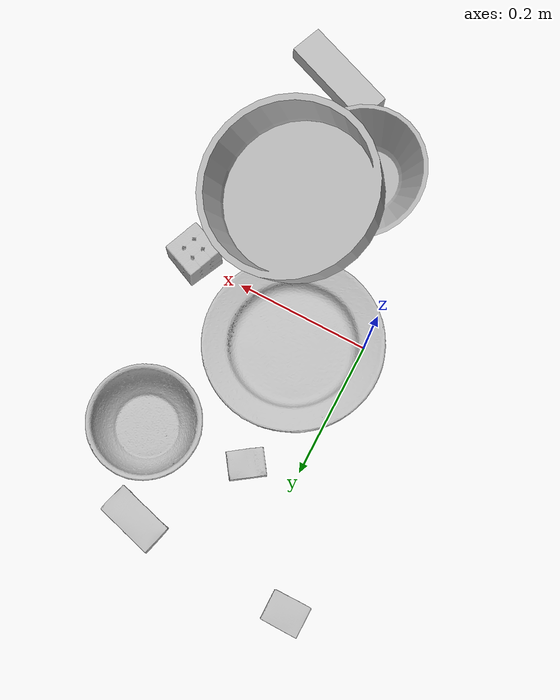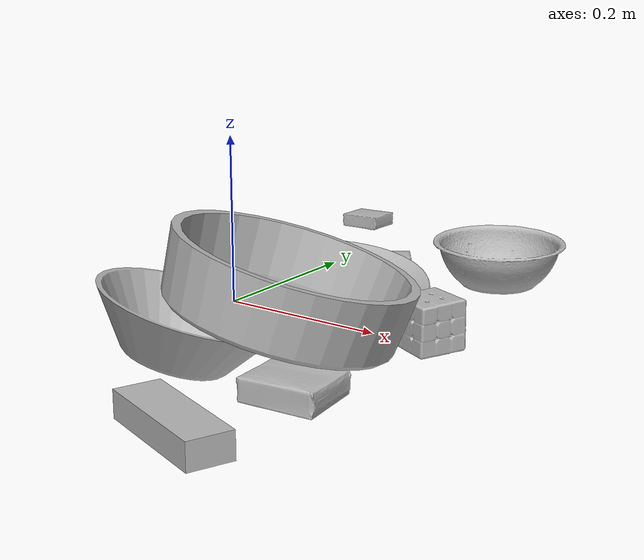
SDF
<sdf version="1.4">
  <world name="default">
    <light name="light1" type="point">
      <pose>0 0 1 0 0 0</pose>
      <diffuse>3 3 3 1</diffuse>
      <specular>3 3 3 1</specular>
    </light>
    <light name="light2" type="point">
      <pose>0 0.5 2 0 0 0</pose>
      <diffuse>1 1 1 1</diffuse>
      <specular>1 1 1 1</specular>
    </light>
    <light name="light3" type="point">
      <pose>0 0.5 2 0 0 0</pose>
      <diffuse>3 3 3 1</diffuse>
      <specular>3 3 3 1</specular>
    </light>
    <scene>
      <ambient>0.7 0.7 0.7</ambient>
    </scene>
    <model name="box1">
      <link name="link_box1">
        <collision name="default">
          <geometry>
            <mesh>
              <uri>model://jenga/collision_meshes/collision.obj</uri>
              <scale>1.0 1.0 1.0</scale>
            </mesh>
          </geometry>
          <surface>
            <friction>
              <ode>
                <mu>0.5</mu>
                <mu2>0.5</mu2>
              </ode>
            </friction>
          <contact>
        <ode>
            <max_vel>0</max_vel>
            <min_depth>0.0001</min_depth>
            <kp>1e8</kp>
        </ode>
    </contact></surface>
        </collision>
        <visual name="default">
          <geometry>
            <mesh>
              <uri>model://jenga/visual_meshes/visual.dae</uri>
              <scale>1.0 1.0 1.0</scale>
            </mesh>
          </geometry>
        </visual>
        <inertial>
          <mass>0.2830650806427002</mass>
          <pose>-2.502855807051674e-07 -0.00010250010382151231 -4.0923401684267446e-05 0.0 -7.34215461761844e-07 0.0</pose>
          <inertia>
            <ixx>7.833097e-05</ixx>
            <iyy>0.0005307686</iyy>
            <izz>0.0005666406</izz>
            <ixy>0</ixy>
            <ixz>0</ixz>
            <iyz>0</iyz>
          </inertia>
        </inertial>
      </link>
      <pose>0.22101682424545288 -0.34949374198913574 0.01499999687075615 -1.584611024230362e-08 7.26703799904159e-10 2.7734441649621284</pose>
    </model>
    <model name="box11">
      <link name="link_box11">
        <collision name="default">
          <geometry>
            <mesh>
              <uri>model://cracker_box/collision_meshes/collision.obj</uri>
              <scale>0.25 0.25 0.25</scale>
            </mesh>
          </geometry>
          <surface>
            <friction>
              <ode>
                <mu>0.5</mu>
                <mu2>0.5</mu2>
              </ode>
            </friction>
          <contact>
        <ode>
            <max_vel>0</max_vel>
            <min_depth>0.0001</min_depth>
            <kp>1e8</kp>
        </ode>
    </contact></surface>
        </collision>
        <visual name="default">
          <geometry>
            <mesh>
              <uri>model://cracker_box/visual_meshes/visual.dae</uri>
              <scale>0.25 0.25 0.25</scale>
            </mesh>
          </geometry>
        </visual>
        <inertial>
          <mass>0.04137800261378288</mass>
          <pose>0.00023660347505938262 6.358561950037256e-05 -0.0004257383698131889 -0.00031620748486547713 -0.011106488669102847 0.002546795699546287</pose>
          <inertia>
            <ixx>6.577948e-06</ixx>
            <iyy>1.0861484e-05</iyy>
            <izz>1.5500336e-05</izz>
            <ixy>0</ixy>
            <ixz>0</ixz>
            <iyz>0</iyz>
          </inertia>
        </inertial>
      </link>
      <pose>0.07039869576692581 0.22493493556976318 0.009096028283238411 -0.014050245688698268 -0.005016441211208985 0.6179279692105227</pose>
    </model>
    <model name="box2">
      <link name="link_box2">
        <collision name="default">
          <geometry>
            <mesh>
              <uri>model://gelatin_box/collision_meshes/collision.obj</uri>
              <scale>1.0 1.0 1.0</scale>
            </mesh>
          </geometry>
          <surface>
            <friction>
              <ode>
                <mu>0.5</mu>
                <mu2>0.5</mu2>
              </ode>
            </friction>
          <contact>
        <ode>
            <max_vel>0</max_vel>
            <min_depth>0.0001</min_depth>
            <kp>1e8</kp>
        </ode>
    </contact></surface>
        </collision>
        <visual name="default">
          <geometry>
            <mesh>
              <uri>model://gelatin_box/visual_meshes/visual.dae</uri>
              <scale>1.0 1.0 1.0</scale>
            </mesh>
          </geometry>
        </visual>
        <inertial>
          <mass>0.22900472581386566</mass>
          <pose>0.000431961816502735 0.00011156871914863586 -0.0003640321083366871 -0.001050372089182411 -0.004755818223717792 0.016440559471606643</pose>
          <inertia>
            <ixx>0.00016165864</ixx>
            <iyy>0.00011547193</iyy>
            <izz>0.00024608054</izz>
            <ixy>0</ixy>
            <ixz>0</ixz>
            <iyz>0</iyz>
          </inertia>
        </inertial>
      </link>
      <pose>0.2524434030056 -0.20873324573040009 0.015168342739343643 0.005605290846359133 -0.00729637572268423 1.6633535921523723</pose>
    </model>
    <model name="box21">
      <link name="link_box21">
        <collision name="default">
          <geometry>
            <mesh>
              <uri>model://sugar_box/collision_meshes/collision.obj</uri>
              <scale>0.5 0.5 0.5</scale>
            </mesh>
          </geometry>
          <surface>
            <friction>
              <ode>
                <mu>0.5</mu>
                <mu2>0.5</mu2>
              </ode>
            </friction>
          <contact>
        <ode>
            <max_vel>0</max_vel>
            <min_depth>0.0001</min_depth>
            <kp>1e8</kp>
        </ode>
    </contact></surface>
        </collision>
        <visual name="default">
          <geometry>
            <mesh>
              <uri>model://sugar_box/visual_meshes/visual.dae</uri>
              <scale>0.5 0.5 0.5</scale>
            </mesh>
          </geometry>
        </visual>
        <inertial>
          <mass>0.12271630764007568</mass>
          <pose>0.0005171863595023751 1.924554817378521e-05 -0.00018182404164690524 -0.00040462595111886014 0.0010506636380741379 0.0026153785562511135</pose>
          <inertia>
            <ixx>2.5561721e-05</ixx>
            <iyy>8.262075e-05</iyy>
            <izz>9.890688e-05</izz>
            <ixy>0</ixy>
            <ixz>0</ixz>
            <iyz>0</iyz>
          </inertia>
        </inertial>
      </link>
      <pose>0.17023219168186188 0.3636738061904907 0.011399299837648869 0.0007750777126933873 -0.023433147979008525 2.8690893643450006</pose>
    </model>
    <model name="box3">
      <link name="link_box3">
        <collision name="default">
          <geometry>
            <mesh>
              <uri>model://rubiks_cube/collision_meshes/collision.obj</uri>
              <scale>1.0 1.0 1.0</scale>
            </mesh>
          </geometry>
          <surface>
            <friction>
              <ode>
                <mu>0.5</mu>
                <mu2>0.5</mu2>
              </ode>
            </friction>
          <contact>
        <ode>
            <max_vel>0</max_vel>
            <min_depth>0.0001</min_depth>
            <kp>1e8</kp>
        </ode>
    </contact></surface>
        </collision>
        <visual name="default">
          <geometry>
            <mesh>
              <uri>model://rubiks_cube/visual_meshes/visual.dae</uri>
              <scale>1.0 1.0 1.0</scale>
            </mesh>
          </geometry>
        </visual>
        <inertial>
          <mass>0.16665811836719513</mass>
          <pose>2.6721039830590598e-05 5.256966323941015e-05 -7.264316082000732e-06 -0.05467166844566422 -0.0981397083583286 -0.034457090447706985</pose>
          <inertia>
            <ixx>9.20898e-05</ixx>
            <iyy>9.166034e-05</iyy>
            <izz>9.285292e-05</izz>
            <ixy>0</ixy>
            <ixz>0</ixz>
            <iyz>0</iyz>
          </inertia>
        </inertial>
      </link>
      <pose>0.27658841013908386 -0.00267037027515471 0.0286798644810915 1.0365859144908214e-05 -2.0803753102355662e-06 1.1870614150610974</pose>
    </model>
    <model name="box31">
      <link name="link_box31">
        <collision name="default">
          <geometry>
            <mesh>
              <uri>model://pudding_box/collision_meshes/collision.obj</uri>
              <scale>0.5 0.5 0.5</scale>
            </mesh>
          </geometry>
          <surface>
            <friction>
              <ode>
                <mu>0.5</mu>
                <mu2>0.5</mu2>
              </ode>
            </friction>
          <contact>
        <ode>
            <max_vel>0</max_vel>
            <min_depth>0.0001</min_depth>
            <kp>1e8</kp>
        </ode>
    </contact></surface>
        </collision>
        <visual name="default">
          <geometry>
            <mesh>
              <uri>model://pudding_box/visual_meshes/visual.dae</uri>
              <scale>0.5 0.5 0.5</scale>
            </mesh>
          </geometry>
        </visual>
        <inertial>
          <mass>0.023591291159391403</mass>
          <pose>0.00024474109522998333 0.00040339428232982755 -0.0002594413817860186 0.00521310040348307 -0.006603797312523218 0.020079827030686108</pose>
          <inertia>
            <ixx>6.667184e-06</ixx>
            <iyy>4.4857293e-06</iyy>
            <izz>9.845841e-06</izz>
            <ixy>0</ixy>
            <ixz>0</ixz>
            <iyz>0</iyz>
          </inertia>
        </inertial>
      </link>
      <pose>-0.07186388224363327 0.37767207622528076 0.009862908162176609 0.022349477467386476 -0.011391230463184375 -1.5706368394272157</pose>
    </model>
    <model name="plate1">
      <link name="link_plate1">
        <collision name="default">
          <geometry>
            <mesh>
              <uri>model://plate/collision_meshes/collision.obj</uri>
              <scale>1.0 1.0 1.0</scale>
            </mesh>
          </geometry>
          <surface>
            <friction>
              <ode>
                <mu>0.5</mu>
                <mu2>0.5</mu2>
              </ode>
            </friction>
          <contact>
        <ode>
            <max_vel>0</max_vel>
            <min_depth>0.0001</min_depth>
            <kp>1e8</kp>
        </ode>
    </contact></surface>
        </collision>
        <visual name="default">
          <geometry>
            <mesh>
              <uri>model://plate/visual_meshes/visual.dae</uri>
              <scale>1.0 1.0 1.0</scale>
            </mesh>
          </geometry>
        </visual>
        <inertial>
          <mass>0.2114637792110443</mass>
          <pose>-0.0006044656038284302 0.0002782588708214462 -0.0010561993112787604 0.002218744002621918 -0.003225513006599694 0.45262307488796183</pose>
          <inertia>
            <ixx>0.0009892316</ixx>
            <iyy>0.0009797702</iyy>
            <izz>0.0019347895</izz>
            <ixy>0</ixy>
            <ixz>0</ixz>
            <iyz>0</iyz>
          </inertia>
        </inertial>
      </link>
      <pose>0.09115563333034515 0.04592135548591614 0.02220742404460907 -0.09977603276064709 0.042034811520019894 -1.725722998256667</pose>
    </model>
    <model name="bowl1">
      <link name="link_bowl1">
        <collision name="default">
          <geometry>
            <mesh>
              <uri>model://bowl_a/collision_meshes/collision.obj</uri>
              <scale>1.0 1.0 1.0</scale>
            </mesh>
          </geometry>
          <surface>
            <friction>
              <ode>
                <mu>0.5</mu>
                <mu2>0.5</mu2>
              </ode>
            </friction>
          <contact>
        <ode>
            <max_vel>0</max_vel>
            <min_depth>0.0001</min_depth>
            <kp>1e8</kp>
        </ode>
    </contact></surface>
        </collision>
        <visual name="default">
          <geometry>
            <mesh>
              <uri>model://bowl_a/visual_meshes/visual.dae</uri>
              <scale>1.0 1.0 1.0</scale>
            </mesh>
          </geometry>
        </visual>
        <inertial>
          <mass>0.48499906063079834</mass>
          <pose>0.00027867438620887697 4.731262743007392e-05 -0.0013765298062935472 -0.0009805334386135593 -0.0010938262367740986 -0.19123808511586568</pose>
          <inertia>
            <ixx>0.0013808149</ixx>
            <iyy>0.0013892918</iyy>
            <izz>0.0024558324</izz>
            <ixy>0</ixy>
            <ixz>0</ixz>
            <iyz>0</iyz>
          </inertia>
        </inertial>
      </link>
      <pose>0.11390390247106552 -0.21688543260097504 0.04596199095249176 0.3056399807042762 -0.03882963268840613 2.446414883928865</pose>
    </model>
    <model name="plate2">
      <link name="link_plate2">
        <collision name="default">
          <geometry>
            <mesh>
              <uri>model://pan_tefal/collision_meshes/collision.obj</uri>
              <scale>1.0 1.0 1.0</scale>
            </mesh>
          </geometry>
          <surface>
            <friction>
              <ode>
                <mu>0.5</mu>
                <mu2>0.5</mu2>
              </ode>
            </friction>
          <contact>
        <ode>
            <max_vel>0</max_vel>
            <min_depth>0.0001</min_depth>
            <kp>1e8</kp>
        </ode>
    </contact></surface>
        </collision>
        <visual name="default">
          <geometry>
            <mesh>
              <uri>model://pan_tefal/visual_meshes/visual.dae</uri>
              <scale>1.0 1.0 1.0</scale>
            </mesh>
          </geometry>
        </visual>
        <inertial>
          <mass>1.510846495628357</mass>
          <pose>-0.00018002149590756744 3.279069278505631e-05 -0.008514934219419956 0.0008190286460061649 -0.00033014112223844094 -0.3318560039733936</pose>
          <inertia>
            <ixx>0.010429303</ixx>
            <iyy>0.010496541</iyy>
            <izz>0.01919834</izz>
            <ixy>0</ixy>
            <ixz>0</ixz>
            <iyz>0</iyz>
          </inertia>
        </inertial>
      </link>
      <pose>0.18712593615055084 -0.13501587510108948 0.08377322554588318 0.2807411842813231 -0.07394660836691995 2.564601485557784</pose>
    </model>
    <model name="bowl2">
      <link name="link_bowl2">
        <collision name="default">
          <geometry>
            <mesh>
              <uri>model://bowl/collision_meshes/collision.obj</uri>
              <scale>1.0 1.0 1.0</scale>
            </mesh>
          </geometry>
          <surface>
            <friction>
              <ode>
                <mu>0.5</mu>
                <mu2>0.5</mu2>
              </ode>
            </friction>
          <contact>
        <ode>
            <max_vel>0</max_vel>
            <min_depth>0.0001</min_depth>
            <kp>1e8</kp>
        </ode>
    </contact></surface>
        </collision>
        <visual name="default">
          <geometry>
            <mesh>
              <uri>model://bowl/visual_meshes/visual.dae</uri>
              <scale>1.0 1.0 1.0</scale>
            </mesh>
          </geometry>
        </visual>
        <inertial>
          <mass>0.12714597582817078</mass>
          <pose>0.0002044505235971883 -0.0010302012087777257 -0.0008042659610509872 -0.015764101160635133 0.01454679544325816 0.7140405339594252</pose>
          <inertia>
            <ixx>0.0002920644</ixx>
            <iyy>0.00028553858</iyy>
            <izz>0.0004913528</izz>
            <ixy>0</ixy>
            <ixz>0</ixz>
            <iyz>0</iyz>
          </inertia>
        </inertial>
      </link>
      <pose>0.21859188377857208 0.2433099001646042 0.02778000757098198 1.8347946110839994e-09 2.7250595620867627e-08 -0.5751014251166715</pose>
    </model>
  <physics type="ode">
      <max_contacts>50</max_contacts>
      <ode>
        <solver>
          <type>quick</type>
          <iters>75</iters>
        </solver>
        <constraints>
          <contact_max_correcting_vel>0</contact_max_correcting_vel>
          <contact_surface_layer>0</contact_surface_layer>
        </constraints>
      </ode>
    </physics></world>
</sdf>
